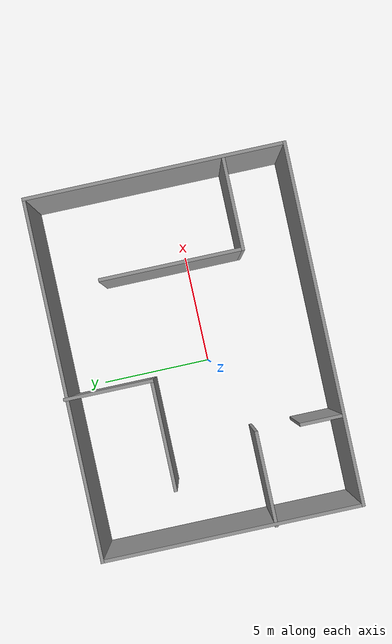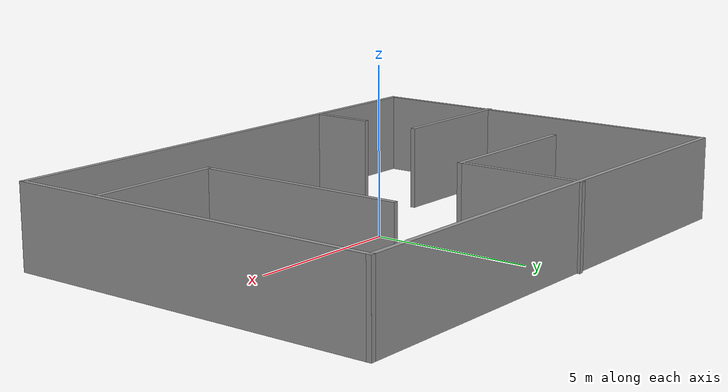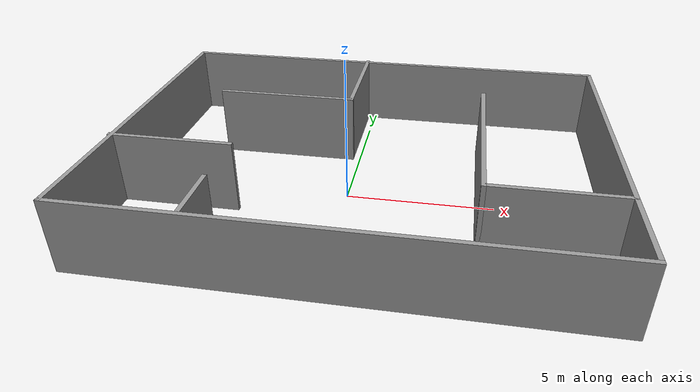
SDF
<?xml version='1.0'?>
<sdf version='1.7'>
  <model name='custom_world'>
    <pose>0.481827 0.630566 0 0 -0 0</pose>
    <link name='Wall_1'>
      <collision name='Wall_1_Collision'>
        <geometry>
          <box>
            <size>16.25 0.15 2.5</size>
          </box>
        </geometry>
        <pose>0 0 1.25 0 -0 0</pose>
      </collision>
      <visual name='Wall_1_Visual'>
        <pose>0 0 1.25 0 -0 0</pose>
        <geometry>
          <box>
            <size>16.25 0.15 2.5</size>
          </box>
        </geometry>
        <material>
          <script>
            <uri>file://media/materials/scripts/gazebo.material</uri>
            <name>Gazebo/Grey</name>
          </script>
          <ambient>1 1 1 1</ambient>
        </material>
        <meta>
          <layer>0</layer>
        </meta>
      </visual>
      <pose>0.032026 -5.84329 0 0 -0 0</pose>
    </link>
    <link name='Wall_11'>
      <collision name='Wall_11_Collision'>
        <geometry>
          <box>
            <size>2 0.15 2.5</size>
          </box>
        </geometry>
        <pose>0 0 1.25 0 -0 0</pose>
      </collision>
      <visual name='Wall_11_Visual'>
        <pose>0 0 1.25 0 -0 0</pose>
        <geometry>
          <box>
            <size>2 0.15 2.5</size>
          </box>
        </geometry>
        <material>
          <script>
            <uri>file://media/materials/scripts/gazebo.material</uri>
            <name>Gazebo/Grey</name>
          </script>
          <ambient>1 1 1 1</ambient>
        </material>
        <meta>
          <layer>0</layer>
        </meta>
      </visual>
      <pose>-4.03647 -4.88292 0 0 -0 1.5708</pose>
    </link>
    <link name='Wall_13'>
      <collision name='Wall_13_Collision'>
        <geometry>
          <box>
            <size>4 0.15 2.5</size>
          </box>
        </geometry>
        <pose>0 0 1.25 0 -0 0</pose>
      </collision>
      <visual name='Wall_13_Visual'>
        <pose>0 0 1.25 0 -0 0</pose>
        <geometry>
          <box>
            <size>4 0.15 2.5</size>
          </box>
        </geometry>
        <material>
          <script>
            <uri>file://media/materials/scripts/gazebo.material</uri>
            <name>Gazebo/Grey</name>
          </script>
          <ambient>1 1 1 1</ambient>
        </material>
        <meta>
          <layer>0</layer>
        </meta>
      </visual>
      <pose>-0.800023 3.91829 0 0 -0 -1.5708</pose>
    </link>
    <link name='Wall_14'>
      <collision name='Wall_14_Collision'>
        <geometry>
          <box>
            <size>5 0.15 2.5</size>
          </box>
        </geometry>
        <pose>0 0 1.25 0 -0 0</pose>
      </collision>
      <visual name='Wall_14_Visual'>
        <pose>0 0 1.25 0 -0 0</pose>
        <geometry>
          <box>
            <size>5 0.15 2.5</size>
          </box>
        </geometry>
        <material>
          <script>
            <uri>file://media/materials/scripts/gazebo.material</uri>
            <name>Gazebo/Grey</name>
          </script>
          <ambient>1 1 1 1</ambient>
        </material>
        <meta>
          <layer>0</layer>
        </meta>
      </visual>
      <pose>-3.22502 1.99329 0 0 -0 3.14159</pose>
    </link>
    <link name='Wall_2'>
      <collision name='Wall_2_Collision'>
        <geometry>
          <box>
            <size>11.75 0.15 2.5</size>
          </box>
        </geometry>
        <pose>0 0 1.25 0 -0 0</pose>
      </collision>
      <visual name='Wall_2_Visual'>
        <pose>0 0 1.25 0 -0 0</pose>
        <geometry>
          <box>
            <size>11.75 0.15 2.5</size>
          </box>
        </geometry>
        <material>
          <script>
            <uri>file://media/materials/scripts/gazebo.material</uri>
            <name>Gazebo/Grey</name>
          </script>
          <ambient>1 1 1 1</ambient>
        </material>
        <meta>
          <layer>0</layer>
        </meta>
      </visual>
      <pose>8.08203 -0.043286 0 0 -0 1.5708</pose>
    </link>
    <link name='Wall_3'>
      <collision name='Wall_3_Collision'>
        <geometry>
          <box>
            <size>16.25 0.15 2.5</size>
          </box>
        </geometry>
        <pose>0 0 1.25 0 -0 0</pose>
      </collision>
      <visual name='Wall_3_Visual'>
        <pose>0 0 1.25 0 -0 0</pose>
        <geometry>
          <box>
            <size>16.25 0.15 2.5</size>
          </box>
        </geometry>
        <material>
          <script>
            <uri>file://media/materials/scripts/gazebo.material</uri>
            <name>Gazebo/Grey</name>
          </script>
          <ambient>1 1 1 1</ambient>
        </material>
        <meta>
          <layer>0</layer>
        </meta>
      </visual>
      <pose>0.032026 5.75671 0 0 -0 3.14159</pose>
    </link>
    <link name='Wall_4'>
      <collision name='Wall_4_Collision'>
        <geometry>
          <box>
            <size>11.75 0.15 2.5</size>
          </box>
        </geometry>
        <pose>0 0 1.25 0 -0 0</pose>
      </collision>
      <visual name='Wall_4_Visual'>
        <pose>0 0 1.25 0 -0 0</pose>
        <geometry>
          <box>
            <size>11.75 0.15 2.5</size>
          </box>
        </geometry>
        <material>
          <script>
            <uri>file://media/materials/scripts/gazebo.material</uri>
            <name>Gazebo/Grey</name>
          </script>
          <ambient>1 1 1 1</ambient>
        </material>
        <meta>
          <layer>0</layer>
        </meta>
      </visual>
      <pose>-8.01797 -0.043286 0 0 -0 -1.5708</pose>
    </link>
    <link name='Wall_6'>
      <collision name='Wall_6_Collision'>
        <geometry>
          <box>
            <size>4.25 0.15 2.5</size>
          </box>
        </geometry>
        <pose>0 0 1.25 0 -0 0</pose>
      </collision>
      <visual name='Wall_6_Visual'>
        <pose>0 0 1.25 0 -0 0</pose>
        <geometry>
          <box>
            <size>4.25 0.15 2.5</size>
          </box>
        </geometry>
        <material>
          <script>
            <uri>file://media/materials/scripts/gazebo.material</uri>
            <name>Gazebo/Grey</name>
          </script>
          <ambient>1 1 1 1</ambient>
        </material>
        <meta>
          <layer>0</layer>
        </meta>
      </visual>
      <pose>6.00975 -3.0974 0 0 -0 3.14159</pose>
    </link>
    <link name='Wall_7'>
      <collision name='Wall_7_Collision'>
        <geometry>
          <box>
            <size>6.5 0.15 2.5</size>
          </box>
        </geometry>
        <pose>0 0 1.25 0 -0 0</pose>
      </collision>
      <visual name='Wall_7_Visual'>
        <pose>0 0 1.25 0 -0 0</pose>
        <geometry>
          <box>
            <size>6.5 0.15 2.5</size>
          </box>
        </geometry>
        <material>
          <script>
            <uri>file://media/materials/scripts/gazebo.material</uri>
            <name>Gazebo/Grey</name>
          </script>
          <ambient>1 1 1 1</ambient>
        </material>
        <meta>
          <layer>0</layer>
        </meta>
      </visual>
      <pose>3.95975 0.077604 0 0 -0 1.5708</pose>
    </link>
    <link name='Wall_9'>
      <collision name='Wall_9_Collision'>
        <geometry>
          <box>
            <size>4.25 0.15 2.5</size>
          </box>
        </geometry>
        <pose>0 0 1.25 0 -0 0</pose>
      </collision>
      <visual name='Wall_9_Visual'>
        <pose>0 0 1.25 0 -0 0</pose>
        <geometry>
          <box>
            <size>4.25 0.15 2.5</size>
          </box>
        </geometry>
        <material>
          <script>
            <uri>file://media/materials/scripts/gazebo.material</uri>
            <name>Gazebo/Grey</name>
          </script>
          <ambient>1 1 1 1</ambient>
        </material>
        <meta>
          <layer>0</layer>
        </meta>
      </visual>
      <pose>-6.03203 -1.96464 0 0 -0 0</pose>
    </link>
    <static>1</static>
  </model>
</sdf>
